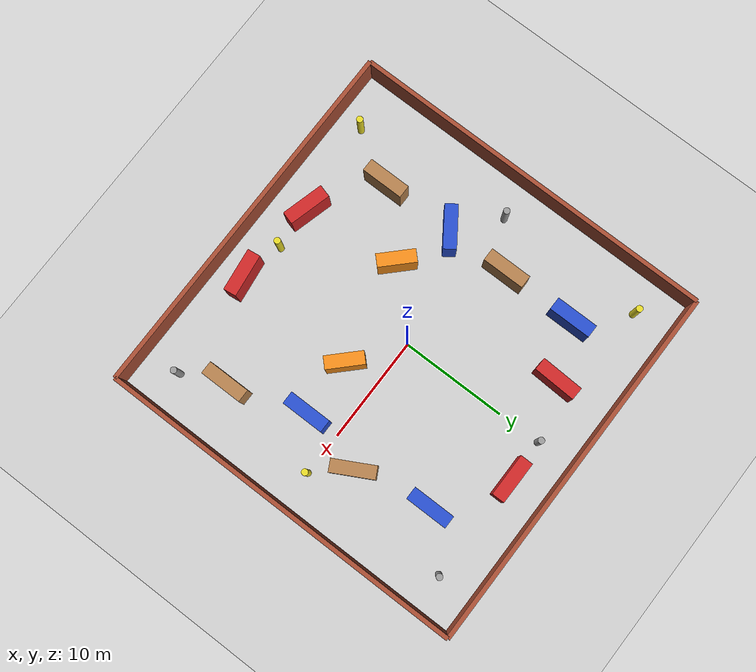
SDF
<sdf version="1.7">
 <world name="warehouse_world">
  <gravity>0 0 -9.8</gravity>
  <physics type="ode">
   <max_step_size>0.001</max_step_size>
   <real_time_factor>1</real_time_factor>
   <real_time_update_rate>1000</real_time_update_rate>
  </physics>
  <scene><ambient>0.6 0.6 0.6 1</ambient><background>0.8 0.8 0.8 1</background><shadows>1</shadows></scene>
  <light name="sun" type="directional">
   <pose>0 0 30 0 -0 0</pose>
   <diffuse>0.9 0.9 0.9 1</diffuse>
   <specular>0.2 0.2 0.2 1</specular>
   <attenuation>
    <range>1000</range>
    <constant>0.9</constant>
    <linear>0.01</linear>
    <quadratic>0.001</quadratic>
   </attenuation>
   <direction>-0.5 0.2 -0.9</direction>
   <spot><inner_angle>0</inner_angle><outer_angle>0</outer_angle><falloff>0</falloff></spot>
  </light>
  <model name="ground_plane">
   <static>1</static>
   <link name="link">
    <collision name="collision">
     <geometry><plane><normal>0 0 1</normal><size>80 80</size></plane></geometry>
     <surface><friction><ode><mu>1</mu><mu2>1</mu2></ode></friction></surface>
    </collision>
    <visual name="visual">
     <cast_shadows>0</cast_shadows>
     <geometry><plane><normal>0 0 1</normal><size>80 80</size></plane></geometry>
     <material>
      <script><uri>file://media/materials/scripts/gazebo.material</uri><name>Gazebo/Grey</name></script>
     </material>
    </visual>
   </link>
  </model>
  <model name="north_wall">
   <pose>0 17.5 1.5 0 -0 0</pose>
   <static>1</static>
   <link name="link">
    <collision name="collision"><geometry><box><size>35 0.4 3</size></box></geometry></collision>
    <visual name="visual">
     <geometry><box><size>35 0.4 3</size></box></geometry>
     <material>
      <script><uri>file://media/materials/scripts/gazebo.material</uri><name>Gazebo/Bricks</name></script>
     </material>
    </visual>
   </link>
  </model>
  <model name="south_wall">
   <pose>0 -17.5 1.5 0 -0 0</pose>
   <static>1</static>
   <link name="link">
    <collision name="collision"><geometry><box><size>35 0.4 3</size></box></geometry></collision>
    <visual name="visual">
     <geometry><box><size>35 0.4 3</size></box></geometry>
     <material>
      <script><uri>file://media/materials/scripts/gazebo.material</uri><name>Gazebo/Bricks</name></script>
     </material>
    </visual>
   </link>
  </model>
  <model name="east_wall">
   <pose>17.5 0 1.5 0 -0 0</pose>
   <static>1</static>
   <link name="link">
    <collision name="collision"><geometry><box><size>0.4 35 3</size></box></geometry></collision>
    <visual name="visual">
     <geometry><box><size>0.4 35 3</size></box></geometry>
     <material>
      <script><uri>file://media/materials/scripts/gazebo.material</uri><name>Gazebo/Bricks</name></script>
     </material>
    </visual>
   </link>
  </model>
  <model name="west_wall">
   <pose>-17.5 0 1.5 0 -0 0</pose>
   <static>1</static>
   <link name="link">
    <collision name="collision"><geometry><box><size>0.4 35 3</size></box></geometry></collision>
    <visual name="visual">
     <geometry><box><size>0.4 35 3</size></box></geometry>
     <material>
      <script><uri>file://media/materials/scripts/gazebo.material</uri><name>Gazebo/Bricks</name></script>
     </material>
    </visual>
   </link>
  </model>
  <model name="structural_pillar_0">
   <pose>-12.8078 -15.0063 1.5 0 -0 0</pose>
   <static>1</static>
   <link name="link">
    <collision name="collision">
     <geometry><cylinder><radius>0.3</radius><length>3</length></cylinder></geometry>
    </collision>
    <visual name="visual">
     <geometry><cylinder><radius>0.3</radius><length>3</length></cylinder></geometry>
     <material>
      <script><uri>file://media/materials/scripts/gazebo.material</uri><name>Gazebo/Yellow</name></script>
     </material>
    </visual>
   </link>
  </model>
  <model name="structural_pillar_1">
   <pose>-14 0 1.5 0 -0 0</pose>
   <static>1</static>
   <link name="link">
    <collision name="collision">
     <geometry><cylinder><radius>0.3</radius><length>3</length></cylinder></geometry>
    </collision>
    <visual name="visual">
     <geometry><cylinder><radius>0.3</radius><length>3</length></cylinder></geometry>
     <material>
      <script><uri>file://media/materials/scripts/gazebo.material</uri><name>Gazebo/Grey</name></script>
     </material>
    </visual>
   </link>
  </model>
  <model name="structural_pillar_2">
   <pose>-14 14 1.5 0 -0 0</pose>
   <static>1</static>
   <link name="link">
    <collision name="collision">
     <geometry><cylinder><radius>0.3</radius><length>3</length></cylinder></geometry>
    </collision>
    <visual name="visual">
     <geometry><cylinder><radius>0.3</radius><length>3</length></cylinder></geometry>
     <material>
      <script><uri>file://media/materials/scripts/gazebo.material</uri><name>Gazebo/Yellow</name></script>
     </material>
    </visual>
   </link>
  </model>
  <model name="structural_pillar_3">
   <pose>14 -14 1.5 0 -0 0</pose>
   <static>1</static>
   <link name="link">
    <collision name="collision">
     <geometry><cylinder><radius>0.3</radius><length>3</length></cylinder></geometry>
    </collision>
    <visual name="visual">
     <geometry><cylinder><radius>0.3</radius><length>3</length></cylinder></geometry>
     <material>
      <script><uri>file://media/materials/scripts/gazebo.material</uri><name>Gazebo/Grey</name></script>
     </material>
    </visual>
   </link>
  </model>
  <model name="structural_pillar_4">
   <pose>14 0 1.5 0 -0 0</pose>
   <static>1</static>
   <link name="link">
    <collision name="collision">
     <geometry><cylinder><radius>0.3</radius><length>3</length></cylinder></geometry>
    </collision>
    <visual name="visual">
     <geometry><cylinder><radius>0.3</radius><length>3</length></cylinder></geometry>
     <material>
      <script><uri>file://media/materials/scripts/gazebo.material</uri><name>Gazebo/Yellow</name></script>
     </material>
    </visual>
   </link>
  </model>
  <model name="structural_pillar_5">
   <pose>14 14 1.5 0 -0 0</pose>
   <static>1</static>
   <link name="link">
    <collision name="collision">
     <geometry><cylinder><radius>0.3</radius><length>3</length></cylinder></geometry>
    </collision>
    <visual name="visual">
     <geometry><cylinder><radius>0.3</radius><length>3</length></cylinder></geometry>
     <material>
      <script><uri>file://media/materials/scripts/gazebo.material</uri><name>Gazebo/Grey</name></script>
     </material>
    </visual>
   </link>
  </model>
  <model name="structural_pillar_6">
   <pose>0 -14 1.5 0 -0 0</pose>
   <static>1</static>
   <link name="link">
    <collision name="collision">
     <geometry><cylinder><radius>0.3</radius><length>3</length></cylinder></geometry>
    </collision>
    <visual name="visual">
     <geometry><cylinder><radius>0.3</radius><length>3</length></cylinder></geometry>
     <material>
      <script><uri>file://media/materials/scripts/gazebo.material</uri><name>Gazebo/Yellow</name></script>
     </material>
    </visual>
   </link>
  </model>
  <model name="structural_pillar_7">
   <pose>0 14 1.5 0 -0 0</pose>
   <static>1</static>
   <link name="link">
    <collision name="collision">
     <geometry><cylinder><radius>0.3</radius><length>3</length></cylinder></geometry>
    </collision>
    <visual name="visual">
     <geometry><cylinder><radius>0.3</radius><length>3</length></cylinder></geometry>
     <material>
      <script><uri>file://media/materials/scripts/gazebo.material</uri><name>Gazebo/Grey</name></script>
     </material>
    </visual>
   </link>
  </model>
  <model name="rack_vertical_0">
   <pose>-10 -10 1.5 0 -0 0</pose>
   <static>1</static>
   <link name="link">
    <collision name="collision"><geometry><box><size>1.2 4 3</size></box></geometry></collision>
    <visual name="visual">
     <geometry><box><size>1.2 4 3</size></box></geometry>
     <material>
      <script><uri>file://media/materials/scripts/gazebo.material</uri><name>Gazebo/Wood</name></script>
     </material>
    </visual>
   </link>
  </model>
  <model name="rack_vertical_1">
   <pose>-10 -3 1.5 0 0 -0.965879</pose>
   <static>1</static>
   <link name="link">
    <collision name="collision"><geometry><box><size>1.2 4 3</size></box></geometry></collision>
    <visual name="visual">
     <geometry><box><size>1.2 4 3</size></box></geometry>
     <material>
      <script><uri>file://media/materials/scripts/gazebo.material</uri><name>Gazebo/Blue</name></script>
     </material>
    </visual>
   </link>
  </model>
  <model name="rack_vertical_2">
   <pose>-10 3 1.5 0 -0 0</pose>
   <static>1</static>
   <link name="link">
    <collision name="collision"><geometry><box><size>1.2 4 3</size></box></geometry></collision>
    <visual name="visual">
     <geometry><box><size>1.2 4 3</size></box></geometry>
     <material>
      <script><uri>file://media/materials/scripts/gazebo.material</uri><name>Gazebo/Wood</name></script>
     </material>
    </visual>
   </link>
  </model>
  <model name="rack_vertical_3">
   <pose>-10 10 1.5 0 -0 0</pose>
   <static>1</static>
   <link name="link">
    <collision name="collision"><geometry><box><size>1.2 4 3</size></box></geometry></collision>
    <visual name="visual">
     <geometry><box><size>1.2 4 3</size></box></geometry>
     <material>
      <script><uri>file://media/materials/scripts/gazebo.material</uri><name>Gazebo/Blue</name></script>
     </material>
    </visual>
   </link>
  </model>
  <model name="rack_vertical_4">
   <pose>12.1547 -10 1.5 0 -0 0</pose>
   <static>1</static>
   <link name="link">
    <collision name="collision"><geometry><box><size>1.2 4 3</size></box></geometry></collision>
    <visual name="visual">
     <geometry><box><size>1.2 4 3</size></box></geometry>
     <material>
      <script><uri>file://media/materials/scripts/gazebo.material</uri><name>Gazebo/Wood</name></script>
     </material>
    </visual>
   </link>
  </model>
  <model name="rack_vertical_5">
   <pose>10 -3 1.5 0 -0 0</pose>
   <static>1</static>
   <link name="link">
    <collision name="collision"><geometry><box><size>1.2 4 3</size></box></geometry></collision>
    <visual name="visual">
     <geometry><box><size>1.2 4 3</size></box></geometry>
     <material>
      <script><uri>file://media/materials/scripts/gazebo.material</uri><name>Gazebo/Blue</name></script>
     </material>
    </visual>
   </link>
  </model>
  <model name="rack_vertical_6">
   <pose>11.3681 3 1.5 0 -0 0.491292</pose>
   <static>1</static>
   <link name="link">
    <collision name="collision"><geometry><box><size>1.2 4 3</size></box></geometry></collision>
    <visual name="visual">
     <geometry><box><size>1.2 4 3</size></box></geometry>
     <material>
      <script><uri>file://media/materials/scripts/gazebo.material</uri><name>Gazebo/Wood</name></script>
     </material>
    </visual>
   </link>
  </model>
  <model name="rack_vertical_7">
   <pose>10 10 1.5 0 -0 0</pose>
   <static>1</static>
   <link name="link">
    <collision name="collision"><geometry><box><size>1.2 4 3</size></box></geometry></collision>
    <visual name="visual">
     <geometry><box><size>1.2 4 3</size></box></geometry>
     <material>
      <script><uri>file://media/materials/scripts/gazebo.material</uri><name>Gazebo/Blue</name></script>
     </material>
    </visual>
   </link>
  </model>
  <model name="rack_horizontal_0">
   <pose>-4 -14 1.5 0 0 -0.267028</pose>
   <static>1</static>
   <link name="link">
    <collision name="collision"><geometry><box><size>4 1.2 3</size></box></geometry></collision>
    <visual name="visual">
     <geometry><box><size>4 1.2 3</size></box></geometry>
     <material>
      <script><uri>file://media/materials/scripts/gazebo.material</uri><name>Gazebo/Red</name></script>
     </material>
    </visual>
   </link>
  </model>
  <model name="rack_horizontal_1">
   <pose>4 -14.6664 1.5 0 -0 0.126782</pose>
   <static>1</static>
   <link name="link">
    <collision name="collision"><geometry><box><size>4 1.2 3</size></box></geometry></collision>
    <visual name="visual">
     <geometry><box><size>4 1.2 3</size></box></geometry>
     <material>
      <script><uri>file://media/materials/scripts/gazebo.material</uri><name>Gazebo/Red</name></script>
     </material>
    </visual>
   </link>
  </model>
  <model name="rack_horizontal_2">
   <pose>-5.03197 12.081 1.5 0 0 -1.61447</pose>
   <static>1</static>
   <link name="link">
    <collision name="collision"><geometry><box><size>4 1.2 3</size></box></geometry></collision>
    <visual name="visual">
     <geometry><box><size>4 1.2 3</size></box></geometry>
     <material>
      <script><uri>file://media/materials/scripts/gazebo.material</uri><name>Gazebo/Red</name></script>
     </material>
    </visual>
   </link>
  </model>
  <model name="rack_horizontal_3">
   <pose>4 14 1.5 0 -0 0</pose>
   <static>1</static>
   <link name="link">
    <collision name="collision"><geometry><box><size>4 1.2 3</size></box></geometry></collision>
    <visual name="visual">
     <geometry><box><size>4 1.2 3</size></box></geometry>
     <material>
      <script><uri>file://media/materials/scripts/gazebo.material</uri><name>Gazebo/Red</name></script>
     </material>
    </visual>
   </link>
  </model>
  <model name="rack_diagonal_1">
   <pose>-5 -5 1.5 0 -0 0.785398</pose>
   <static>1</static>
   <link name="link">
    <collision name="collision"><geometry><box><size>1.2 3.5 3</size></box></geometry></collision>
    <visual name="visual">
     <geometry><box><size>1.2 3.5 3</size></box></geometry>
     <material>
      <script><uri>file://media/materials/scripts/gazebo.material</uri><name>Gazebo/Orange</name></script>
     </material>
    </visual>
   </link>
  </model>
  <model name="rack_diagonal_2">
   <pose>4.6188 -3.14907 1.5 0 -0 0.785398</pose>
   <static>1</static>
   <link name="link">
    <collision name="collision"><geometry><box><size>1.2 3.5 3</size></box></geometry></collision>
    <visual name="visual">
     <geometry><box><size>1.2 3.5 3</size></box></geometry>
     <material>
      <script><uri>file://media/materials/scripts/gazebo.material</uri><name>Gazebo/Orange</name></script>
     </material>
    </visual>
   </link>
  </model>
  <magnetic_field>6e-06 2.3e-05 -4.2e-05</magnetic_field>
  <atmosphere type="adiabatic"/>
  <spherical_coordinates>
   <surface_model>EARTH_WGS84</surface_model>
   <latitude_deg>0</latitude_deg>
   <longitude_deg>0</longitude_deg>
   <elevation>0</elevation>
   <heading_deg>0</heading_deg>
  </spherical_coordinates>
 </world>
</sdf>
